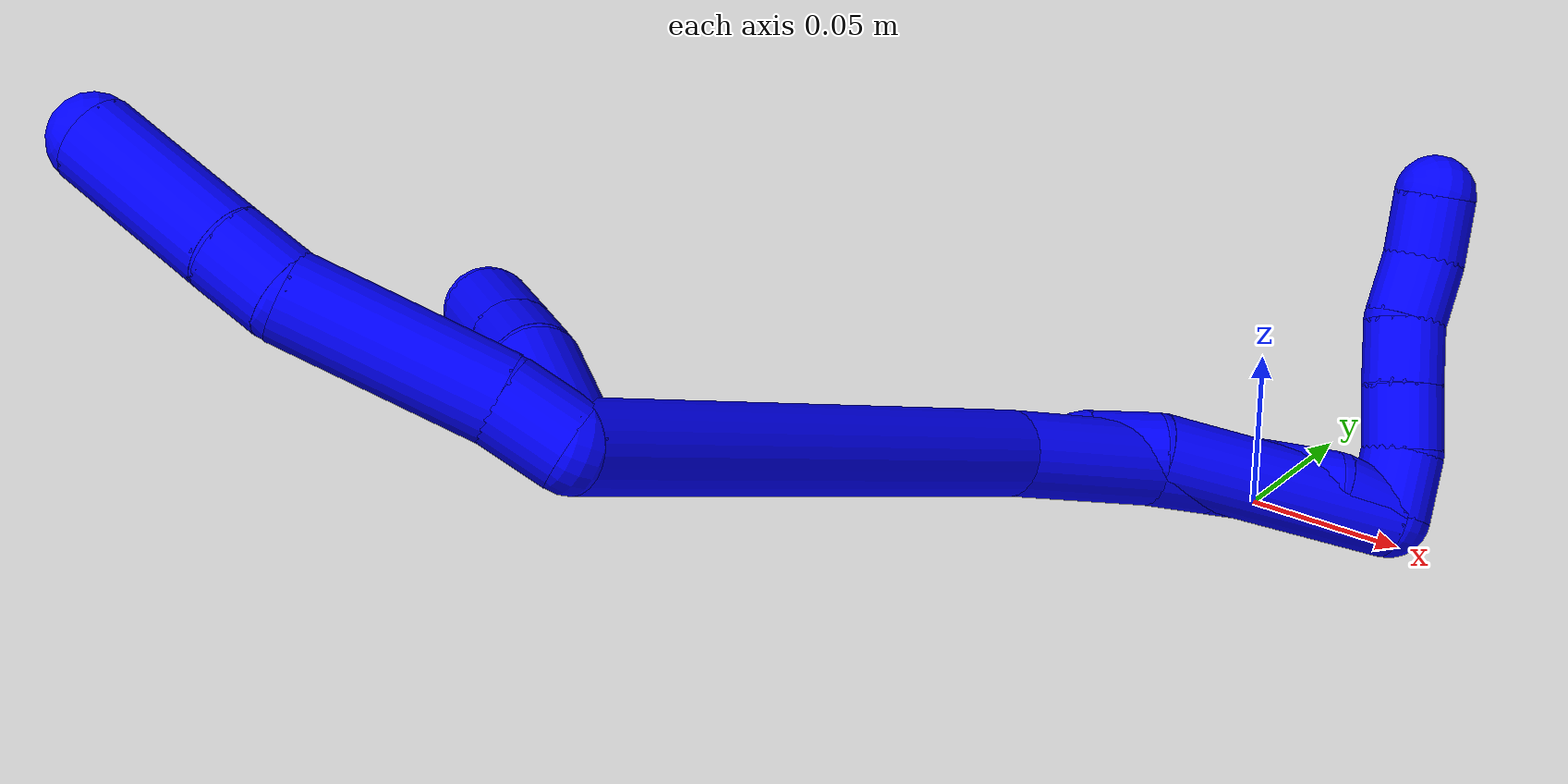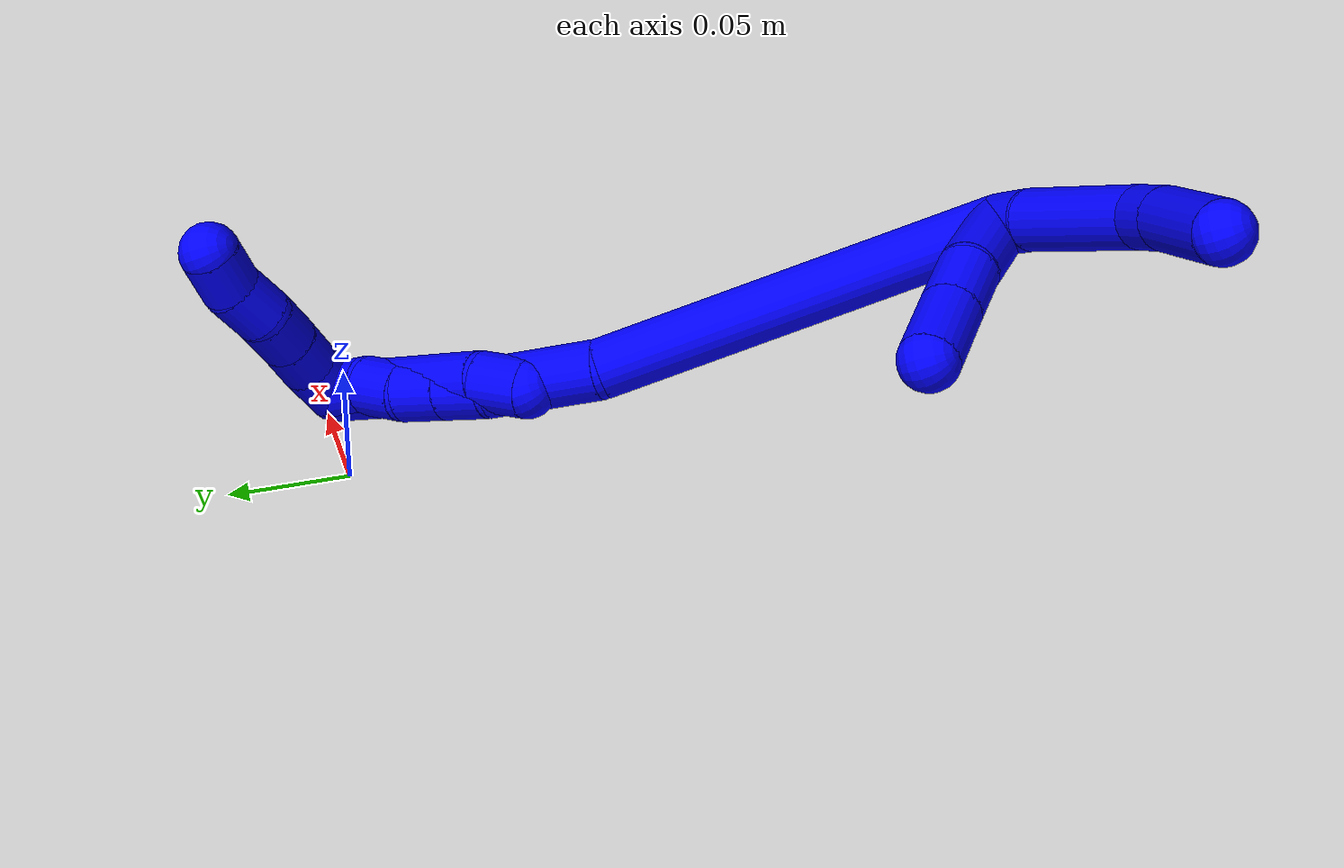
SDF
<sdf version="1.7">
 <world name="default">
  <model name="photoneo_s_sensor">
   <static>1</static>
   <pose>0 0 2 1.57079 1.57079 3.14159</pose>
   <link name="link">
    <inertial><mass>0.1</mass></inertial>
    <sensor name="sensor" type="depth">
     <update_rate>30</update_rate>
     <camera>
      <horizontal_fov>1.22</horizontal_fov>
      <image><width>1920</width><height>1200</height><format>B8G8R8</format></image>
      <clip><near>0.1</near><far>4</far></clip>
      <depth_camera><output>points</output></depth_camera>
     </camera>
     <plugin name="camera_plugin" filename="libgazebo_ros_depth_camera.so">
      <baseline>0.2</baseline>
      <alwaysOn>1</alwaysOn>
      <updateRate>0.0</updateRate>
      <cameraName>camera_ir</cameraName>
      <imageTopicName>/camera/color/image_raw</imageTopicName>
      <cameraInfoTopicName>/camera/color/camera_info</cameraInfoTopicName>
      <depthImageTopicName>/camera/depth/image_raw</depthImageTopicName>
      <depthImageCameraInfoTopicName>/camera/depth/camera_info</depthImageCameraInfoTopicName>
      <pointCloudTopicName>/camera/depth/points</pointCloudTopicName>
      <frameName>fr_optical</frameName>
      <pointCloudCutoff>0.1</pointCloudCutoff>
      <pointCloudCutoffMax>2.0</pointCloudCutoffMax>
      <distortionK1>0</distortionK1>
      <distortionK2>0</distortionK2>
      <distortionK3>0</distortionK3>
      <distortionT1>0</distortionT1>
      <distortionT2>0</distortionT2>
      <CxPrime>0</CxPrime>
      <Cx>0</Cx>
      <Cy>0</Cy>
      <focalLength>0</focalLength>
      <hackBaseline>0</hackBaseline>
     </plugin>
    </sensor>
   </link>
  </model>
  <model name="bin">
   <static>1</static>
   <link name="bottom">
    <collision name="collision-bottom">
     <pose>0 0 -0.01 0 -0 0</pose>
     <geometry><box><size>0.8 0.6 0.02</size></box></geometry>
     <surface>
      <friction><ode><mu>100</mu><mu2>100</mu2></ode></friction>
      <contact><collide_bitmask>65535</collide_bitmask></contact>
     </surface>
    </collision>
   </link>
   <link name="west_wall">
    <collision name="collision-west_wall">
     <pose>-0.41 0 0.1 0 -0 0</pose>
     <geometry><box><size>0.02 0.6 0.2</size></box></geometry>
     <surface>
      <friction><ode><mu>100</mu><mu2>100</mu2></ode></friction>
      <contact><collide_bitmask>65535</collide_bitmask></contact>
     </surface>
    </collision>
   </link>
   <link name="east_wall">
    <collision name="collision-east_wall">
     <pose>0.41 0 0.1 0 -0 0</pose>
     <geometry><box><size>0.02 0.6 0.2</size></box></geometry>
     <surface>
      <friction><ode><mu>100</mu><mu2>100</mu2></ode></friction>
      <contact><collide_bitmask>65535</collide_bitmask></contact>
     </surface>
    </collision>
   </link>
   <link name="south_wall">
    <collision name="collision-south_wall">
     <pose>0 -0.31 0.1 0 -0 0</pose>
     <geometry><box><size>0.8 0.02 0.2</size></box></geometry>
     <surface>
      <friction><ode><mu>100</mu><mu2>100</mu2></ode></friction>
      <contact><collide_bitmask>65535</collide_bitmask></contact>
     </surface>
    </collision>
   </link>
   <link name="north_wall">
    <collision name="collision-north_wall">
     <pose>0 0.31 0.1 0 -0 0</pose>
     <geometry><box><size>0.8 0.02 0.2</size></box></geometry>
     <surface>
      <friction><ode><mu>100</mu><mu2>100</mu2></ode></friction>
      <contact><collide_bitmask>65535</collide_bitmask></contact>
     </surface>
    </collision>
   </link>
  </model>
  <model name="1">
   <static>0</static>
   <link name="1">
    <collision name="collision-cylinder-e_1_2_8">
     <pose>-0.001644 0.005099 0.008982 -0.516278 -0.157884 0.041767</pose>
     <geometry><cylinder><radius>0.0125</radius><length>0.020917</length></cylinder></geometry>
     <surface>
      <friction><ode><mu>1.16</mu><mu2>1.16</mu2><slip1>0</slip1><slip2>0</slip2></ode></friction>
      <contact><ode><kp>1e+06</kp><kd>1</kd><max_vel>0</max_vel><min_depth>0.001</min_depth></ode></contact>
     </surface>
    </collision>
    <visual name="visual-cylinder-e_1_2_8">
     <pose>-0.001644 0.005099 0.008982 -0.516278 -0.157884 0.041767</pose>
     <geometry><cylinder><radius>0.0125</radius><length>0.020917</length></cylinder></geometry>
     <material><ambient>0 0 1 1</ambient></material>
    </visual>
    <collision name="collision-cylinder-e_2_8_9">
     <pose>-0.010523 0.02154 0.044593 -0.4027 -0.244908 0.05023</pose>
     <geometry><cylinder><radius>0.0125</radius><length>0.059669</length></cylinder></geometry>
     <surface>
      <friction><ode><mu>1.16</mu><mu2>1.16</mu2><slip1>0</slip1><slip2>0</slip2></ode></friction>
      <contact><ode><kp>1e+06</kp><kd>1</kd><max_vel>0</max_vel><min_depth>0.001</min_depth></ode></contact>
     </surface>
    </collision>
    <visual name="visual-cylinder-e_2_8_9">
     <pose>-0.010523 0.02154 0.044593 -0.4027 -0.244908 0.05023</pose>
     <geometry><cylinder><radius>0.0125</radius><length>0.059669</length></cylinder></geometry>
     <material><ambient>0 0 1 1</ambient></material>
    </visual>
    <collision name="collision-cylinder-e_3_9_10">
     <pose>-0.020321 0.039588 0.078591 -0.738207 -0.251938 0.097898</pose>
     <geometry><cylinder><radius>0.0125</radius><length>0.020574</length></cylinder></geometry>
     <surface>
      <friction><ode><mu>1.16</mu><mu2>1.16</mu2><slip1>0</slip1><slip2>0</slip2></ode></friction>
      <contact><ode><kp>1e+06</kp><kd>1</kd><max_vel>0</max_vel><min_depth>0.001</min_depth></ode></contact>
     </surface>
    </collision>
    <visual name="visual-cylinder-e_3_9_10">
     <pose>-0.020321 0.039588 0.078591 -0.738207 -0.251938 0.097898</pose>
     <geometry><cylinder><radius>0.0125</radius><length>0.020574</length></cylinder></geometry>
     <material><ambient>0 0 1 1</ambient></material>
    </visual>
    <collision name="collision-cylinder-e_4_10_6">
     <pose>-0.03034 0.063347 0.101768 -0.823302 -0.310242 0.136336</pose>
     <geometry><cylinder><radius>0.0125</radius><length>0.04884</length></cylinder></geometry>
     <surface>
      <friction><ode><mu>1.16</mu><mu2>1.16</mu2><slip1>0</slip1><slip2>0</slip2></ode></friction>
      <contact><ode><kp>1e+06</kp><kd>1</kd><max_vel>0</max_vel><min_depth>0.001</min_depth></ode></contact>
     </surface>
    </collision>
    <visual name="visual-cylinder-e_4_10_6">
     <pose>-0.03034 0.063347 0.101768 -0.823302 -0.310242 0.136336</pose>
     <geometry><cylinder><radius>0.0125</radius><length>0.04884</length></cylinder></geometry>
     <material><ambient>0 0 1 1</ambient></material>
    </visual>
    <collision name="collision-cylinder-e_1_2_11">
     <pose>-0.009751 0.01918 -0.000276 -1.58519 -0.470321 0.476886</pose>
     <geometry><cylinder><radius>0.0125</radius><length>0.043036</length></cylinder></geometry>
     <surface>
      <friction><ode><mu>1.16</mu><mu2>1.16</mu2><slip1>0</slip1><slip2>0</slip2></ode></friction>
      <contact><ode><kp>1e+06</kp><kd>1</kd><max_vel>0</max_vel><min_depth>0.001</min_depth></ode></contact>
     </surface>
    </collision>
    <visual name="visual-cylinder-e_1_2_11">
     <pose>-0.009751 0.01918 -0.000276 -1.58519 -0.470321 0.476886</pose>
     <geometry><cylinder><radius>0.0125</radius><length>0.043036</length></cylinder></geometry>
     <material><ambient>0 0 1 1</ambient></material>
    </visual>
    <collision name="collision-cylinder-e_2_11_12">
     <pose>-0.027144 0.048362 -0.001509 -1.66617 -0.650146 0.710186</pose>
     <geometry><cylinder><radius>0.0125</radius><length>0.025247</length></cylinder></geometry>
     <surface>
      <friction><ode><mu>1.16</mu><mu2>1.16</mu2><slip1>0</slip1><slip2>0</slip2></ode></friction>
      <contact><ode><kp>1e+06</kp><kd>1</kd><max_vel>0</max_vel><min_depth>0.001</min_depth></ode></contact>
     </surface>
    </collision>
    <visual name="visual-cylinder-e_2_11_12">
     <pose>-0.027144 0.048362 -0.001509 -1.66617 -0.650146 0.710186</pose>
     <geometry><cylinder><radius>0.0125</radius><length>0.025247</length></cylinder></geometry>
     <material><ambient>0 0 1 1</ambient></material>
    </visual>
    <collision name="collision-cylinder-e_3_12_5">
     <pose>-0.044297 0.071025 -0.003317 -1.6379 -0.643269 0.684637</pose>
     <geometry><cylinder><radius>0.0125</radius><length>0.031717</length></cylinder></geometry>
     <surface>
      <friction><ode><mu>1.16</mu><mu2>1.16</mu2><slip1>0</slip1><slip2>0</slip2></ode></friction>
      <contact><ode><kp>1e+06</kp><kd>1</kd><max_vel>0</max_vel><min_depth>0.001</min_depth></ode></contact>
     </surface>
    </collision>
    <visual name="visual-cylinder-e_3_12_5">
     <pose>-0.044297 0.071025 -0.003317 -1.6379 -0.643269 0.684637</pose>
     <geometry><cylinder><radius>0.0125</radius><length>0.031717</length></cylinder></geometry>
     <material><ambient>0 0 1 1</ambient></material>
    </visual>
    <collision name="collision-cylinder-e_1_2_13">
     <pose>-0.009816 0.033359 -0.077645 -2.7358 -0.115642 0.548563</pose>
     <geometry><cylinder><radius>0.0125</radius><length>0.170152</length></cylinder></geometry>
     <surface>
      <friction><ode><mu>1.16</mu><mu2>1.16</mu2><slip1>0</slip1><slip2>0</slip2></ode></friction>
      <contact><ode><kp>1e+06</kp><kd>1</kd><max_vel>0</max_vel><min_depth>0.001</min_depth></ode></contact>
     </surface>
    </collision>
    <visual name="visual-cylinder-e_1_2_13">
     <pose>-0.009816 0.033359 -0.077645 -2.7358 -0.115642 0.548563</pose>
     <geometry><cylinder><radius>0.0125</radius><length>0.170152</length></cylinder></geometry>
     <material><ambient>0 0 1 1</ambient></material>
    </visual>
    <collision name="collision-cylinder-e_2_13_14">
     <pose>-0.017525 0.072059 -0.17929 -2.9226 0.085531 -0.742397</pose>
     <geometry><cylinder><radius>0.0125</radius><length>0.049354</length></cylinder></geometry>
     <surface>
      <friction><ode><mu>1.16</mu><mu2>1.16</mu2><slip1>0</slip1><slip2>0</slip2></ode></friction>
      <contact><ode><kp>1e+06</kp><kd>1</kd><max_vel>0</max_vel><min_depth>0.001</min_depth></ode></contact>
     </surface>
    </collision>
    <visual name="visual-cylinder-e_2_13_14">
     <pose>-0.017525 0.072059 -0.17929 -2.9226 0.085531 -0.742397</pose>
     <geometry><cylinder><radius>0.0125</radius><length>0.049354</length></cylinder></geometry>
     <material><ambient>0 0 1 1</ambient></material>
    </visual>
    <collision name="collision-cylinder-e_3_14_15">
     <pose>-0.013379 0.077918 -0.213075 -3.08882 0.205008 -2.63928</pose>
     <geometry><cylinder><radius>0.0125</radius><length>0.020018</length></cylinder></geometry>
     <surface>
      <friction><ode><mu>1.16</mu><mu2>1.16</mu2><slip1>0</slip1><slip2>0</slip2></ode></friction>
      <contact><ode><kp>1e+06</kp><kd>1</kd><max_vel>0</max_vel><min_depth>0.001</min_depth></ode></contact>
     </surface>
    </collision>
    <visual name="visual-cylinder-e_3_14_15">
     <pose>-0.013379 0.077918 -0.213075 -3.08882 0.205008 -2.63928</pose>
     <geometry><cylinder><radius>0.0125</radius><length>0.020018</length></cylinder></geometry>
     <material><ambient>0 0 1 1</ambient></material>
    </visual>
    <collision name="collision-cylinder-e_4_15_16">
     <pose>-0.009313 0.078923 -0.232707 -3.09205 0.20297 -2.66427</pose>
     <geometry><cylinder><radius>0.0125</radius><length>0.02013</length></cylinder></geometry>
     <surface>
      <friction><ode><mu>1.16</mu><mu2>1.16</mu2><slip1>0</slip1><slip2>0</slip2></ode></friction>
      <contact><ode><kp>1e+06</kp><kd>1</kd><max_vel>0</max_vel><min_depth>0.001</min_depth></ode></contact>
     </surface>
    </collision>
    <visual name="visual-cylinder-e_4_15_16">
     <pose>-0.009313 0.078923 -0.232707 -3.09205 0.20297 -2.66427</pose>
     <geometry><cylinder><radius>0.0125</radius><length>0.02013</length></cylinder></geometry>
     <material><ambient>0 0 1 1</ambient></material>
    </visual>
    <collision name="collision-cylinder-e_5_16_17">
     <pose>-0.003584 0.078333 -0.251913 3.02692 0.37421 2.55286</pose>
     <geometry><cylinder><radius>0.0125</radius><length>0.020243</length></cylinder></geometry>
     <surface>
      <friction><ode><mu>1.16</mu><mu2>1.16</mu2><slip1>0</slip1><slip2>0</slip2></ode></friction>
      <contact><ode><kp>1e+06</kp><kd>1</kd><max_vel>0</max_vel><min_depth>0.001</min_depth></ode></contact>
     </surface>
    </collision>
    <visual name="visual-cylinder-e_5_16_17">
     <pose>-0.003584 0.078333 -0.251913 3.02692 0.37421 2.55286</pose>
     <geometry><cylinder><radius>0.0125</radius><length>0.020243</length></cylinder></geometry>
     <material><ambient>0 0 1 1</ambient></material>
    </visual>
    <collision name="collision-cylinder-e_6_17_1">
     <pose>0.001116 0.075413 -0.271102 2.95633 0.099715 0.98581</pose>
     <geometry><cylinder><radius>0.0125</radius><length>0.020102</length></cylinder></geometry>
     <surface>
      <friction><ode><mu>1.16</mu><mu2>1.16</mu2><slip1>0</slip1><slip2>0</slip2></ode></friction>
      <contact><ode><kp>1e+06</kp><kd>1</kd><max_vel>0</max_vel><min_depth>0.001</min_depth></ode></contact>
     </surface>
    </collision>
    <visual name="visual-cylinder-e_6_17_1">
     <pose>0.001116 0.075413 -0.271102 2.95633 0.099715 0.98581</pose>
     <geometry><cylinder><radius>0.0125</radius><length>0.020102</length></cylinder></geometry>
     <material><ambient>0 0 1 1</ambient></material>
    </visual>
    <collision name="collision-cylinder-e_1_1_18">
     <pose>-0.004969 0.076247 -0.242665 -0.069827 -0.18266 0.006398</pose>
     <geometry><cylinder><radius>0.0125</radius><length>0.078019</length></cylinder></geometry>
     <surface>
      <friction><ode><mu>1.16</mu><mu2>1.16</mu2><slip1>0</slip1><slip2>0</slip2></ode></friction>
      <contact><ode><kp>1e+06</kp><kd>1</kd><max_vel>0</max_vel><min_depth>0.001</min_depth></ode></contact>
     </surface>
    </collision>
    <visual name="visual-cylinder-e_1_1_18">
     <pose>-0.004969 0.076247 -0.242665 -0.069827 -0.18266 0.006398</pose>
     <geometry><cylinder><radius>0.0125</radius><length>0.078019</length></cylinder></geometry>
     <material><ambient>0 0 1 1</ambient></material>
    </visual>
    <collision name="collision-cylinder-e_2_18_4">
     <pose>-0.016151 0.078356 -0.194215 0.05562 -0.381912 -0.010755</pose>
     <geometry><cylinder><radius>0.0125</radius><length>0.021981</length></cylinder></geometry>
     <surface>
      <friction><ode><mu>1.16</mu><mu2>1.16</mu2><slip1>0</slip1><slip2>0</slip2></ode></friction>
      <contact><ode><kp>1e+06</kp><kd>1</kd><max_vel>0</max_vel><min_depth>0.001</min_depth></ode></contact>
     </surface>
    </collision>
    <visual name="visual-cylinder-e_2_18_4">
     <pose>-0.016151 0.078356 -0.194215 0.05562 -0.381912 -0.010755</pose>
     <geometry><cylinder><radius>0.0125</radius><length>0.021981</length></cylinder></geometry>
     <material><ambient>0 0 1 1</ambient></material>
    </visual>
    <collision name="collision-cylinder-e_1_1_19">
     <pose>0.007971 0.081662 -0.280419 -1.50739 0.625361 -0.589167</pose>
     <geometry><cylinder><radius>0.0125</radius><length>0.02</length></cylinder></geometry>
     <surface>
      <friction><ode><mu>1.16</mu><mu2>1.16</mu2><slip1>0</slip1><slip2>0</slip2></ode></friction>
      <contact><ode><kp>1e+06</kp><kd>1</kd><max_vel>0</max_vel><min_depth>0.001</min_depth></ode></contact>
     </surface>
    </collision>
    <visual name="visual-cylinder-e_1_1_19">
     <pose>0.007971 0.081662 -0.280419 -1.50739 0.625361 -0.589167</pose>
     <geometry><cylinder><radius>0.0125</radius><length>0.02</length></cylinder></geometry>
     <material><ambient>0 0 1 1</ambient></material>
    </visual>
    <collision name="collision-cylinder-e_2_19_20">
     <pose>0.018528 0.098278 -0.277621 -1.30905 0.489612 -0.378807</pose>
     <geometry><cylinder><radius>0.0125</radius><length>0.02</length></cylinder></geometry>
     <surface>
      <friction><ode><mu>1.16</mu><mu2>1.16</mu2><slip1>0</slip1><slip2>0</slip2></ode></friction>
      <contact><ode><kp>1e+06</kp><kd>1</kd><max_vel>0</max_vel><min_depth>0.001</min_depth></ode></contact>
     </surface>
    </collision>
    <visual name="visual-cylinder-e_2_19_20">
     <pose>0.018528 0.098278 -0.277621 -1.30905 0.489612 -0.378807</pose>
     <geometry><cylinder><radius>0.0125</radius><length>0.02</length></cylinder></geometry>
     <material><ambient>0 0 1 1</ambient></material>
    </visual>
    <collision name="collision-cylinder-e_3_20_21">
     <pose>0.027996 0.115396 -0.273485 -1.35851 0.49669 -0.403913</pose>
     <geometry><cylinder><radius>0.0125</radius><length>0.02</length></cylinder></geometry>
     <surface>
      <friction><ode><mu>1.16</mu><mu2>1.16</mu2><slip1>0</slip1><slip2>0</slip2></ode></friction>
      <contact><ode><kp>1e+06</kp><kd>1</kd><max_vel>0</max_vel><min_depth>0.001</min_depth></ode></contact>
     </surface>
    </collision>
    <visual name="visual-cylinder-e_3_20_21">
     <pose>0.027996 0.115396 -0.273485 -1.35851 0.49669 -0.403913</pose>
     <geometry><cylinder><radius>0.0125</radius><length>0.02</length></cylinder></geometry>
     <material><ambient>0 0 1 1</ambient></material>
    </visual>
    <collision name="collision-cylinder-e_4_21_22">
     <pose>0.038646 0.132064 -0.272063 -1.62406 0.629228 -0.661268</pose>
     <geometry><cylinder><radius>0.0125</radius><length>0.02</length></cylinder></geometry>
     <surface>
      <friction><ode><mu>1.16</mu><mu2>1.16</mu2><slip1>0</slip1><slip2>0</slip2></ode></friction>
      <contact><ode><kp>1e+06</kp><kd>1</kd><max_vel>0</max_vel><min_depth>0.001</min_depth></ode></contact>
     </surface>
    </collision>
    <visual name="visual-cylinder-e_4_21_22">
     <pose>0.038646 0.132064 -0.272063 -1.62406 0.629228 -0.661268</pose>
     <geometry><cylinder><radius>0.0125</radius><length>0.02</length></cylinder></geometry>
     <material><ambient>0 0 1 1</ambient></material>
    </visual>
    <collision name="collision-cylinder-e_5_22_3">
     <pose>0.051249 0.147289 -0.270561 -1.30687 0.736581 -0.574572</pose>
     <geometry><cylinder><radius>0.0125</radius><length>0.02</length></cylinder></geometry>
     <surface>
      <friction><ode><mu>1.16</mu><mu2>1.16</mu2><slip1>0</slip1><slip2>0</slip2></ode></friction>
      <contact><ode><kp>1e+06</kp><kd>1</kd><max_vel>0</max_vel><min_depth>0.001</min_depth></ode></contact>
     </surface>
    </collision>
    <visual name="visual-cylinder-e_5_22_3">
     <pose>0.051249 0.147289 -0.270561 -1.30687 0.736581 -0.574572</pose>
     <geometry><cylinder><radius>0.0125</radius><length>0.02</length></cylinder></geometry>
     <material><ambient>0 0 1 1</ambient></material>
    </visual>
    <collision name="collision-sphere-3">
     <pose>0.057966 0.15444 -0.268629 0 -0 0</pose>
     <geometry><sphere><radius>0.0125</radius></sphere></geometry>
     <surface>
      <friction><ode><mu>1.16</mu><mu2>1.16</mu2><slip1>0</slip1><slip2>0</slip2></ode></friction>
      <contact><ode><kp>1e+06</kp><kd>1</kd><max_vel>0</max_vel><min_depth>0.001</min_depth></ode></contact>
     </surface>
    </collision>
    <visual name="visual-sphere-3">
     <pose>0.057966 0.15444 -0.268629 0 -0 0</pose>
     <geometry><sphere><radius>0.0125</radius></sphere></geometry>
     <material><ambient>0 0 1 1</ambient></material>
    </visual>
    <collision name="collision-sphere-22">
     <pose>0.044531 0.140137 -0.272494 0 -0 0</pose>
     <geometry><sphere><radius>0.0125</radius></sphere></geometry>
     <surface>
      <friction><ode><mu>1.16</mu><mu2>1.16</mu2><slip1>0</slip1><slip2>0</slip2></ode></friction>
      <contact><ode><kp>1e+06</kp><kd>1</kd><max_vel>0</max_vel><min_depth>0.001</min_depth></ode></contact>
     </surface>
    </collision>
    <visual name="visual-sphere-22">
     <pose>0.044531 0.140137 -0.272494 0 -0 0</pose>
     <geometry><sphere><radius>0.0125</radius></sphere></geometry>
     <material><ambient>0 0 1 1</ambient></material>
    </visual>
    <collision name="collision-sphere-21">
     <pose>0.032761 0.123991 -0.271633 0 -0 0</pose>
     <geometry><sphere><radius>0.0125</radius></sphere></geometry>
     <surface>
      <friction><ode><mu>1.16</mu><mu2>1.16</mu2><slip1>0</slip1><slip2>0</slip2></ode></friction>
      <contact><ode><kp>1e+06</kp><kd>1</kd><max_vel>0</max_vel><min_depth>0.001</min_depth></ode></contact>
     </surface>
    </collision>
    <visual name="visual-sphere-21">
     <pose>0.032761 0.123991 -0.271633 0 -0 0</pose>
     <geometry><sphere><radius>0.0125</radius></sphere></geometry>
     <material><ambient>0 0 1 1</ambient></material>
    </visual>
    <collision name="collision-sphere-20">
     <pose>0.02323 0.106802 -0.275338 0 -0 0</pose>
     <geometry><sphere><radius>0.0125</radius></sphere></geometry>
     <surface>
      <friction><ode><mu>1.16</mu><mu2>1.16</mu2><slip1>0</slip1><slip2>0</slip2></ode></friction>
      <contact><ode><kp>1e+06</kp><kd>1</kd><max_vel>0</max_vel><min_depth>0.001</min_depth></ode></contact>
     </surface>
    </collision>
    <visual name="visual-sphere-20">
     <pose>0.02323 0.106802 -0.275338 0 -0 0</pose>
     <geometry><sphere><radius>0.0125</radius></sphere></geometry>
     <material><ambient>0 0 1 1</ambient></material>
    </visual>
    <collision name="collision-sphere-19">
     <pose>0.013825 0.089753 -0.279905 0 -0 0</pose>
     <geometry><sphere><radius>0.0125</radius></sphere></geometry>
     <surface>
      <friction><ode><mu>1.16</mu><mu2>1.16</mu2><slip1>0</slip1><slip2>0</slip2></ode></friction>
      <contact><ode><kp>1e+06</kp><kd>1</kd><max_vel>0</max_vel><min_depth>0.001</min_depth></ode></contact>
     </surface>
    </collision>
    <visual name="visual-sphere-19">
     <pose>0.013825 0.089753 -0.279905 0 -0 0</pose>
     <geometry><sphere><radius>0.0125</radius></sphere></geometry>
     <material><ambient>0 0 1 1</ambient></material>
    </visual>
    <collision name="collision-sphere-11">
     <pose>-0.019503 0.038359 -0.000552 0 -0 0</pose>
     <geometry><sphere><radius>0.0125</radius></sphere></geometry>
     <surface>
      <friction><ode><mu>1.16</mu><mu2>1.16</mu2><slip1>0</slip1><slip2>0</slip2></ode></friction>
      <contact><ode><kp>1e+06</kp><kd>1</kd><max_vel>0</max_vel><min_depth>0.001</min_depth></ode></contact>
     </surface>
    </collision>
    <visual name="visual-sphere-11">
     <pose>-0.019503 0.038359 -0.000552 0 -0 0</pose>
     <geometry><sphere><radius>0.0125</radius></sphere></geometry>
     <material><ambient>0 0 1 1</ambient></material>
    </visual>
    <collision name="collision-sphere-6">
     <pose>-0.037796 0.080401 0.117576 0 -0 0</pose>
     <geometry><sphere><radius>0.0125</radius></sphere></geometry>
     <surface>
      <friction><ode><mu>1.16</mu><mu2>1.16</mu2><slip1>0</slip1><slip2>0</slip2></ode></friction>
      <contact><ode><kp>1e+06</kp><kd>1</kd><max_vel>0</max_vel><min_depth>0.001</min_depth></ode></contact>
     </surface>
    </collision>
    <visual name="visual-sphere-6">
     <pose>-0.037796 0.080401 0.117576 0 -0 0</pose>
     <geometry><sphere><radius>0.0125</radius></sphere></geometry>
     <material><ambient>0 0 1 1</ambient></material>
    </visual>
    <collision name="collision-sphere-10">
     <pose>-0.022885 0.046292 0.08596 0 -0 0</pose>
     <geometry><sphere><radius>0.0125</radius></sphere></geometry>
     <surface>
      <friction><ode><mu>1.16</mu><mu2>1.16</mu2><slip1>0</slip1><slip2>0</slip2></ode></friction>
      <contact><ode><kp>1e+06</kp><kd>1</kd><max_vel>0</max_vel><min_depth>0.001</min_depth></ode></contact>
     </surface>
    </collision>
    <visual name="visual-sphere-10">
     <pose>-0.022885 0.046292 0.08596 0 -0 0</pose>
     <geometry><sphere><radius>0.0125</radius></sphere></geometry>
     <material><ambient>0 0 1 1</ambient></material>
    </visual>
    <collision name="collision-sphere-9">
     <pose>-0.017756 0.032884 0.071222 0 -0 0</pose>
     <geometry><sphere><radius>0.0125</radius></sphere></geometry>
     <surface>
      <friction><ode><mu>1.16</mu><mu2>1.16</mu2><slip1>0</slip1><slip2>0</slip2></ode></friction>
      <contact><ode><kp>1e+06</kp><kd>1</kd><max_vel>0</max_vel><min_depth>0.001</min_depth></ode></contact>
     </surface>
    </collision>
    <visual name="visual-sphere-9">
     <pose>-0.017756 0.032884 0.071222 0 -0 0</pose>
     <geometry><sphere><radius>0.0125</radius></sphere></geometry>
     <material><ambient>0 0 1 1</ambient></material>
    </visual>
    <collision name="collision-sphere-2">
     <geometry><sphere><radius>0.0125</radius></sphere></geometry>
     <surface>
      <friction><ode><mu>1.16</mu><mu2>1.16</mu2><slip1>0</slip1><slip2>0</slip2></ode></friction>
      <contact><ode><kp>1e+06</kp><kd>1</kd><max_vel>0</max_vel><min_depth>0.001</min_depth></ode></contact>
     </surface>
    </collision>
    <visual name="visual-sphere-2">
     <geometry><sphere><radius>0.0125</radius></sphere></geometry>
     <material><ambient>0 0 1 1</ambient></material>
    </visual>
    <collision name="collision-sphere-8">
     <pose>-0.003289 0.010197 0.017964 0 -0 0</pose>
     <geometry><sphere><radius>0.0125</radius></sphere></geometry>
     <surface>
      <friction><ode><mu>1.16</mu><mu2>1.16</mu2><slip1>0</slip1><slip2>0</slip2></ode></friction>
      <contact><ode><kp>1e+06</kp><kd>1</kd><max_vel>0</max_vel><min_depth>0.001</min_depth></ode></contact>
     </surface>
    </collision>
    <visual name="visual-sphere-8">
     <pose>-0.003289 0.010197 0.017964 0 -0 0</pose>
     <geometry><sphere><radius>0.0125</radius></sphere></geometry>
     <material><ambient>0 0 1 1</ambient></material>
    </visual>
    <collision name="collision-sphere-12">
     <pose>-0.034785 0.058364 -0.002466 0 -0 0</pose>
     <geometry><sphere><radius>0.0125</radius></sphere></geometry>
     <surface>
      <friction><ode><mu>1.16</mu><mu2>1.16</mu2><slip1>0</slip1><slip2>0</slip2></ode></friction>
      <contact><ode><kp>1e+06</kp><kd>1</kd><max_vel>0</max_vel><min_depth>0.001</min_depth></ode></contact>
     </surface>
    </collision>
    <visual name="visual-sphere-12">
     <pose>-0.034785 0.058364 -0.002466 0 -0 0</pose>
     <geometry><sphere><radius>0.0125</radius></sphere></geometry>
     <material><ambient>0 0 1 1</ambient></material>
    </visual>
    <collision name="collision-sphere-5">
     <pose>-0.053809 0.083685 -0.004168 0 -0 0</pose>
     <geometry><sphere><radius>0.0125</radius></sphere></geometry>
     <surface>
      <friction><ode><mu>1.16</mu><mu2>1.16</mu2><slip1>0</slip1><slip2>0</slip2></ode></friction>
      <contact><ode><kp>1e+06</kp><kd>1</kd><max_vel>0</max_vel><min_depth>0.001</min_depth></ode></contact>
     </surface>
    </collision>
    <visual name="visual-sphere-5">
     <pose>-0.053809 0.083685 -0.004168 0 -0 0</pose>
     <geometry><sphere><radius>0.0125</radius></sphere></geometry>
     <material><ambient>0 0 1 1</ambient></material>
    </visual>
    <collision name="collision-sphere-13">
     <pose>-0.019633 0.066718 -0.15529 0 -0 0</pose>
     <geometry><sphere><radius>0.0125</radius></sphere></geometry>
     <surface>
      <friction><ode><mu>1.16</mu><mu2>1.16</mu2><slip1>0</slip1><slip2>0</slip2></ode></friction>
      <contact><ode><kp>1e+06</kp><kd>1</kd><max_vel>0</max_vel><min_depth>0.001</min_depth></ode></contact>
     </surface>
    </collision>
    <visual name="visual-sphere-13">
     <pose>-0.019633 0.066718 -0.15529 0 -0 0</pose>
     <geometry><sphere><radius>0.0125</radius></sphere></geometry>
     <material><ambient>0 0 1 1</ambient></material>
    </visual>
    <collision name="collision-sphere-14">
     <pose>-0.015417 0.077401 -0.20329 0 -0 0</pose>
     <geometry><sphere><radius>0.0125</radius></sphere></geometry>
     <surface>
      <friction><ode><mu>1.16</mu><mu2>1.16</mu2><slip1>0</slip1><slip2>0</slip2></ode></friction>
      <contact><ode><kp>1e+06</kp><kd>1</kd><max_vel>0</max_vel><min_depth>0.001</min_depth></ode></contact>
     </surface>
    </collision>
    <visual name="visual-sphere-14">
     <pose>-0.015417 0.077401 -0.20329 0 -0 0</pose>
     <geometry><sphere><radius>0.0125</radius></sphere></geometry>
     <material><ambient>0 0 1 1</ambient></material>
    </visual>
    <collision name="collision-sphere-15">
     <pose>-0.011342 0.078435 -0.222861 0 -0 0</pose>
     <geometry><sphere><radius>0.0125</radius></sphere></geometry>
     <surface>
      <friction><ode><mu>1.16</mu><mu2>1.16</mu2><slip1>0</slip1><slip2>0</slip2></ode></friction>
      <contact><ode><kp>1e+06</kp><kd>1</kd><max_vel>0</max_vel><min_depth>0.001</min_depth></ode></contact>
     </surface>
    </collision>
    <visual name="visual-sphere-15">
     <pose>-0.011342 0.078435 -0.222861 0 -0 0</pose>
     <geometry><sphere><radius>0.0125</radius></sphere></geometry>
     <material><ambient>0 0 1 1</ambient></material>
    </visual>
    <collision name="collision-sphere-16">
     <pose>-0.007284 0.079411 -0.242554 0 -0 0</pose>
     <geometry><sphere><radius>0.0125</radius></sphere></geometry>
     <surface>
      <friction><ode><mu>1.16</mu><mu2>1.16</mu2><slip1>0</slip1><slip2>0</slip2></ode></friction>
      <contact><ode><kp>1e+06</kp><kd>1</kd><max_vel>0</max_vel><min_depth>0.001</min_depth></ode></contact>
     </surface>
    </collision>
    <visual name="visual-sphere-16">
     <pose>-0.007284 0.079411 -0.242554 0 -0 0</pose>
     <geometry><sphere><radius>0.0125</radius></sphere></geometry>
     <material><ambient>0 0 1 1</ambient></material>
    </visual>
    <collision name="collision-sphere-17">
     <pose>0.000116 0.077255 -0.261272 0 -0 0</pose>
     <geometry><sphere><radius>0.0125</radius></sphere></geometry>
     <surface>
      <friction><ode><mu>1.16</mu><mu2>1.16</mu2><slip1>0</slip1><slip2>0</slip2></ode></friction>
      <contact><ode><kp>1e+06</kp><kd>1</kd><max_vel>0</max_vel><min_depth>0.001</min_depth></ode></contact>
     </surface>
    </collision>
    <visual name="visual-sphere-17">
     <pose>0.000116 0.077255 -0.261272 0 -0 0</pose>
     <geometry><sphere><radius>0.0125</radius></sphere></geometry>
     <material><ambient>0 0 1 1</ambient></material>
    </visual>
    <collision name="collision-sphere-1">
     <pose>0.002117 0.073571 -0.280932 0 -0 0</pose>
     <geometry><sphere><radius>0.0125</radius></sphere></geometry>
     <surface>
      <friction><ode><mu>1.16</mu><mu2>1.16</mu2><slip1>0</slip1><slip2>0</slip2></ode></friction>
      <contact><ode><kp>1e+06</kp><kd>1</kd><max_vel>0</max_vel><min_depth>0.001</min_depth></ode></contact>
     </surface>
    </collision>
    <visual name="visual-sphere-1">
     <pose>0.002117 0.073571 -0.280932 0 -0 0</pose>
     <geometry><sphere><radius>0.0125</radius></sphere></geometry>
     <material><ambient>0 0 1 1</ambient></material>
    </visual>
    <collision name="collision-sphere-18">
     <pose>-0.012055 0.078923 -0.204398 0 -0 0</pose>
     <geometry><sphere><radius>0.0125</radius></sphere></geometry>
     <surface>
      <friction><ode><mu>1.16</mu><mu2>1.16</mu2><slip1>0</slip1><slip2>0</slip2></ode></friction>
      <contact><ode><kp>1e+06</kp><kd>1</kd><max_vel>0</max_vel><min_depth>0.001</min_depth></ode></contact>
     </surface>
    </collision>
    <visual name="visual-sphere-18">
     <pose>-0.012055 0.078923 -0.204398 0 -0 0</pose>
     <geometry><sphere><radius>0.0125</radius></sphere></geometry>
     <material><ambient>0 0 1 1</ambient></material>
    </visual>
    <collision name="collision-sphere-4">
     <pose>-0.020247 0.07779 -0.184032 0 -0 0</pose>
     <geometry><sphere><radius>0.0125</radius></sphere></geometry>
     <surface>
      <friction><ode><mu>1.16</mu><mu2>1.16</mu2><slip1>0</slip1><slip2>0</slip2></ode></friction>
      <contact><ode><kp>1e+06</kp><kd>1</kd><max_vel>0</max_vel><min_depth>0.001</min_depth></ode></contact>
     </surface>
    </collision>
    <visual name="visual-sphere-4">
     <pose>-0.020247 0.07779 -0.184032 0 -0 0</pose>
     <geometry><sphere><radius>0.0125</radius></sphere></geometry>
     <material><ambient>0 0 1 1</ambient></material>
    </visual>
    <inertial>
     <pose>-0.007957 0.058996 -0.110617 0 -0 0</pose>
     <mass>0.75</mass>
     <inertia>
      <ixx>0.000663</ixx>
      <ixy>0</ixy>
      <ixz>0</ixz>
      <iyy>-2e-06</iyy>
      <iyz>0</iyz>
      <izz>-0.000142</izz>
     </inertia>
    </inertial>
   </link>
   <pose>-0.055394 -0.257273 0.10788 0.760082 -0.875114 0.061614</pose>
  </model>
 </world>
</sdf>
